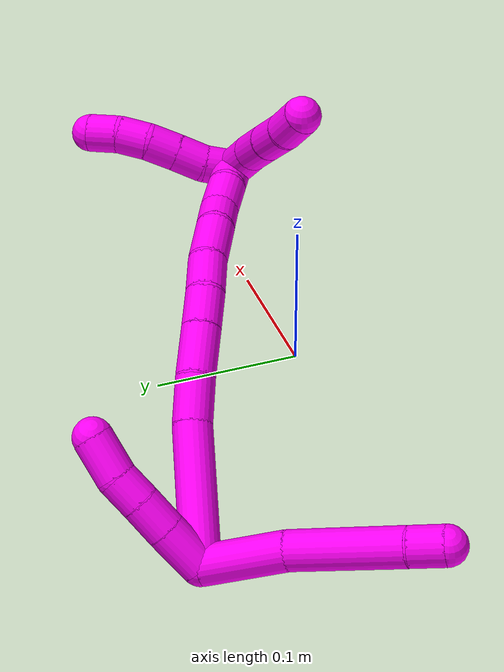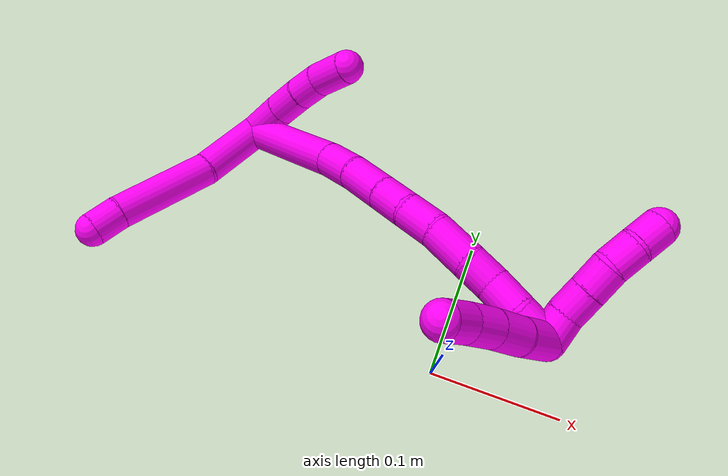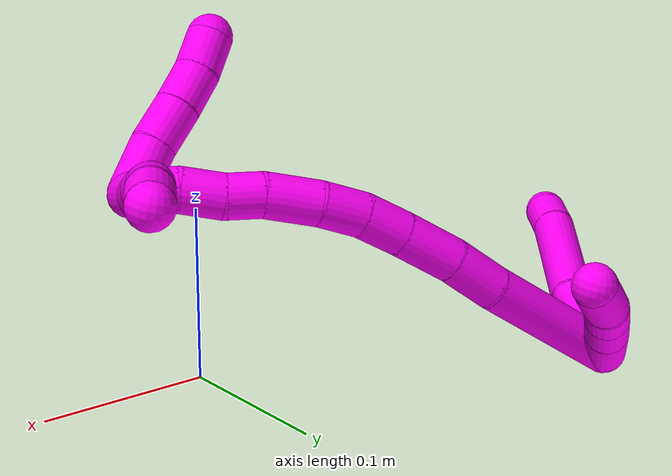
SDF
<sdf version="1.7">
 <world name="default">
  <model name="10">
   <static>0</static>
   <link name="10">
    <collision name="collision-cylinder-e_1_2_8">
     <pose>-0.014524 -0.021295 0.007797 1.21983 -0.569651 -0.403622</pose>
     <geometry><cylinder><radius>0.0125</radius><length>0.053859</length></cylinder></geometry>
     <surface>
      <friction><ode><mu>1.16</mu><mu2>1.16</mu2><slip1>0</slip1><slip2>0</slip2></ode></friction>
      <contact><ode><kp>1e+06</kp><kd>1</kd><max_vel>0</max_vel><min_depth>0.001</min_depth></ode></contact>
     </surface>
    </collision>
    <visual name="visual-cylinder-e_1_2_8">
     <pose>-0.014524 -0.021295 0.007797 1.21983 -0.569651 -0.403622</pose>
     <geometry><cylinder><radius>0.0125</radius><length>0.053859</length></cylinder></geometry>
     <material><ambient>1 0 0.964706 1</ambient></material>
    </visual>
    <collision name="collision-cylinder-e_2_8_9">
     <pose>-0.054026 -0.067108 0.027398 1.1221 -0.7426 -0.479928</pose>
     <geometry><cylinder><radius>0.0125</radius><length>0.073874</length></cylinder></geometry>
     <surface>
      <friction><ode><mu>1.16</mu><mu2>1.16</mu2><slip1>0</slip1><slip2>0</slip2></ode></friction>
      <contact><ode><kp>1e+06</kp><kd>1</kd><max_vel>0</max_vel><min_depth>0.001</min_depth></ode></contact>
     </surface>
    </collision>
    <visual name="visual-cylinder-e_2_8_9">
     <pose>-0.054026 -0.067108 0.027398 1.1221 -0.7426 -0.479928</pose>
     <geometry><cylinder><radius>0.0125</radius><length>0.073874</length></cylinder></geometry>
     <material><ambient>1 0 0.964706 1</ambient></material>
    </visual>
    <collision name="collision-cylinder-e_3_9_6">
     <pose>-0.08618 -0.099754 0.041726 1.26975 -0.700618 -0.525821</pose>
     <geometry><cylinder><radius>0.0125</radius><length>0.022266</length></cylinder></geometry>
     <surface>
      <friction><ode><mu>1.16</mu><mu2>1.16</mu2><slip1>0</slip1><slip2>0</slip2></ode></friction>
      <contact><ode><kp>1e+06</kp><kd>1</kd><max_vel>0</max_vel><min_depth>0.001</min_depth></ode></contact>
     </surface>
    </collision>
    <visual name="visual-cylinder-e_3_9_6">
     <pose>-0.08618 -0.099754 0.041726 1.26975 -0.700618 -0.525821</pose>
     <geometry><cylinder><radius>0.0125</radius><length>0.022266</length></cylinder></geometry>
     <material><ambient>1 0 0.964706 1</ambient></material>
    </visual>
    <collision name="collision-cylinder-e_1_2_10">
     <pose>0.011412 0.004472 0.008588 -0.480107 0.867194 -0.225688</pose>
     <geometry><cylinder><radius>0.0125</radius><length>0.029932</length></cylinder></geometry>
     <surface>
      <friction><ode><mu>1.16</mu><mu2>1.16</mu2><slip1>0</slip1><slip2>0</slip2></ode></friction>
      <contact><ode><kp>1e+06</kp><kd>1</kd><max_vel>0</max_vel><min_depth>0.001</min_depth></ode></contact>
     </surface>
    </collision>
    <visual name="visual-cylinder-e_1_2_10">
     <pose>0.011412 0.004472 0.008588 -0.480107 0.867194 -0.225688</pose>
     <geometry><cylinder><radius>0.0125</radius><length>0.029932</length></cylinder></geometry>
     <material><ambient>1 0 0.964706 1</ambient></material>
    </visual>
    <collision name="collision-cylinder-e_2_10_11">
     <pose>0.031583 0.011871 0.023476 -0.434881 0.900286 -0.212718</pose>
     <geometry><cylinder><radius>0.0125</radius><length>0.022361</length></cylinder></geometry>
     <surface>
      <friction><ode><mu>1.16</mu><mu2>1.16</mu2><slip1>0</slip1><slip2>0</slip2></ode></friction>
      <contact><ode><kp>1e+06</kp><kd>1</kd><max_vel>0</max_vel><min_depth>0.001</min_depth></ode></contact>
     </surface>
    </collision>
    <visual name="visual-cylinder-e_2_10_11">
     <pose>0.031583 0.011871 0.023476 -0.434881 0.900286 -0.212718</pose>
     <geometry><cylinder><radius>0.0125</radius><length>0.022361</length></cylinder></geometry>
     <material><ambient>1 0 0.964706 1</ambient></material>
    </visual>
    <collision name="collision-cylinder-e_3_11_12">
     <pose>0.048583 0.017477 0.03487 -0.484222 0.961165 -0.256092</pose>
     <geometry><cylinder><radius>0.0125</radius><length>0.0201</length></cylinder></geometry>
     <surface>
      <friction><ode><mu>1.16</mu><mu2>1.16</mu2><slip1>0</slip1><slip2>0</slip2></ode></friction>
      <contact><ode><kp>1e+06</kp><kd>1</kd><max_vel>0</max_vel><min_depth>0.001</min_depth></ode></contact>
     </surface>
    </collision>
    <visual name="visual-cylinder-e_3_11_12">
     <pose>0.048583 0.017477 0.03487 -0.484222 0.961165 -0.256092</pose>
     <geometry><cylinder><radius>0.0125</radius><length>0.0201</length></cylinder></geometry>
     <material><ambient>1 0 0.964706 1</ambient></material>
    </visual>
    <collision name="collision-cylinder-e_4_12_5">
     <pose>0.068567 0.02067 0.047198 -0.0709 1.01748 -0.039553</pose>
     <geometry><cylinder><radius>0.0125</radius><length>0.027607</length></cylinder></geometry>
     <surface>
      <friction><ode><mu>1.16</mu><mu2>1.16</mu2><slip1>0</slip1><slip2>0</slip2></ode></friction>
      <contact><ode><kp>1e+06</kp><kd>1</kd><max_vel>0</max_vel><min_depth>0.001</min_depth></ode></contact>
     </surface>
    </collision>
    <visual name="visual-cylinder-e_4_12_5">
     <pose>0.068567 0.02067 0.047198 -0.0709 1.01748 -0.039553</pose>
     <geometry><cylinder><radius>0.0125</radius><length>0.027607</length></cylinder></geometry>
     <material><ambient>1 0 0.964706 1</ambient></material>
    </visual>
    <collision name="collision-cylinder-e_1_2_13">
     <pose>0.035505 -0.020808 0.014924 0.94862 0.945976 0.513833</pose>
     <geometry><cylinder><radius>0.0125</radius><length>0.087551</length></cylinder></geometry>
     <surface>
      <friction><ode><mu>1.16</mu><mu2>1.16</mu2><slip1>0</slip1><slip2>0</slip2></ode></friction>
      <contact><ode><kp>1e+06</kp><kd>1</kd><max_vel>0</max_vel><min_depth>0.001</min_depth></ode></contact>
     </surface>
    </collision>
    <visual name="visual-cylinder-e_1_2_13">
     <pose>0.035505 -0.020808 0.014924 0.94862 0.945976 0.513833</pose>
     <geometry><cylinder><radius>0.0125</radius><length>0.087551</length></cylinder></geometry>
     <material><ambient>1 0 0.964706 1</ambient></material>
    </visual>
    <collision name="collision-cylinder-e_2_13_14">
     <pose>0.081885 -0.050085 0.035628 0.971852 0.814814 0.448205</pose>
     <geometry><cylinder><radius>0.0125</radius><length>0.029893</length></cylinder></geometry>
     <surface>
      <friction><ode><mu>1.16</mu><mu2>1.16</mu2><slip1>0</slip1><slip2>0</slip2></ode></friction>
      <contact><ode><kp>1e+06</kp><kd>1</kd><max_vel>0</max_vel><min_depth>0.001</min_depth></ode></contact>
     </surface>
    </collision>
    <visual name="visual-cylinder-e_2_13_14">
     <pose>0.081885 -0.050085 0.035628 0.971852 0.814814 0.448205</pose>
     <geometry><cylinder><radius>0.0125</radius><length>0.029893</length></cylinder></geometry>
     <material><ambient>1 0 0.964706 1</ambient></material>
    </visual>
    <collision name="collision-cylinder-e_3_14_15">
     <pose>0.104797 -0.068772 0.046196 1.13258 0.81768 0.537548</pose>
     <geometry><cylinder><radius>0.0125</radius><length>0.033</length></cylinder></geometry>
     <surface>
      <friction><ode><mu>1.16</mu><mu2>1.16</mu2><slip1>0</slip1><slip2>0</slip2></ode></friction>
      <contact><ode><kp>1e+06</kp><kd>1</kd><max_vel>0</max_vel><min_depth>0.001</min_depth></ode></contact>
     </surface>
    </collision>
    <visual name="visual-cylinder-e_3_14_15">
     <pose>0.104797 -0.068772 0.046196 1.13258 0.81768 0.537548</pose>
     <geometry><cylinder><radius>0.0125</radius><length>0.033</length></cylinder></geometry>
     <material><ambient>1 0 0.964706 1</ambient></material>
    </visual>
    <collision name="collision-cylinder-e_4_15_16">
     <pose>0.126041 -0.086664 0.054146 1.18006 0.837124 0.579004</pose>
     <geometry><cylinder><radius>0.0125</radius><length>0.02479</length></cylinder></geometry>
     <surface>
      <friction><ode><mu>1.16</mu><mu2>1.16</mu2><slip1>0</slip1><slip2>0</slip2></ode></friction>
      <contact><ode><kp>1e+06</kp><kd>1</kd><max_vel>0</max_vel><min_depth>0.001</min_depth></ode></contact>
     </surface>
    </collision>
    <visual name="visual-cylinder-e_4_15_16">
     <pose>0.126041 -0.086664 0.054146 1.18006 0.837124 0.579004</pose>
     <geometry><cylinder><radius>0.0125</radius><length>0.02479</length></cylinder></geometry>
     <material><ambient>1 0 0.964706 1</ambient></material>
    </visual>
    <collision name="collision-cylinder-e_5_16_17">
     <pose>0.145253 -0.101829 0.058478 1.41569 0.92238 0.804199</pose>
     <geometry><cylinder><radius>0.0125</radius><length>0.025108</length></cylinder></geometry>
     <surface>
      <friction><ode><mu>1.16</mu><mu2>1.16</mu2><slip1>0</slip1><slip2>0</slip2></ode></friction>
      <contact><ode><kp>1e+06</kp><kd>1</kd><max_vel>0</max_vel><min_depth>0.001</min_depth></ode></contact>
     </surface>
    </collision>
    <visual name="visual-cylinder-e_5_16_17">
     <pose>0.145253 -0.101829 0.058478 1.41569 0.92238 0.804199</pose>
     <geometry><cylinder><radius>0.0125</radius><length>0.025108</length></cylinder></geometry>
     <material><ambient>1 0 0.964706 1</ambient></material>
    </visual>
    <collision name="collision-cylinder-e_6_17_18">
     <pose>0.166461 -0.119614 0.059098 1.62431 0.826872 0.866981</pose>
     <geometry><cylinder><radius>0.0125</radius><length>0.030445</length></cylinder></geometry>
     <surface>
      <friction><ode><mu>1.16</mu><mu2>1.16</mu2><slip1>0</slip1><slip2>0</slip2></ode></friction>
      <contact><ode><kp>1e+06</kp><kd>1</kd><max_vel>0</max_vel><min_depth>0.001</min_depth></ode></contact>
     </surface>
    </collision>
    <visual name="visual-cylinder-e_6_17_18">
     <pose>0.166461 -0.119614 0.059098 1.62431 0.826872 0.866981</pose>
     <geometry><cylinder><radius>0.0125</radius><length>0.030445</length></cylinder></geometry>
     <material><ambient>1 0 0.964706 1</ambient></material>
    </visual>
    <collision name="collision-cylinder-e_7_18_19">
     <pose>0.185231 -0.136286 0.056243 1.91732 0.840177 1.13323</pose>
     <geometry><cylinder><radius>0.0125</radius><length>0.020326</length></cylinder></geometry>
     <surface>
      <friction><ode><mu>1.16</mu><mu2>1.16</mu2><slip1>0</slip1><slip2>0</slip2></ode></friction>
      <contact><ode><kp>1e+06</kp><kd>1</kd><max_vel>0</max_vel><min_depth>0.001</min_depth></ode></contact>
     </surface>
    </collision>
    <visual name="visual-cylinder-e_7_18_19">
     <pose>0.185231 -0.136286 0.056243 1.91732 0.840177 1.13323</pose>
     <geometry><cylinder><radius>0.0125</radius><length>0.020326</length></cylinder></geometry>
     <material><ambient>1 0 0.964706 1</ambient></material>
    </visual>
    <collision name="collision-cylinder-e_8_19_20">
     <pose>0.201168 -0.151258 0.053322 1.64262 0.770888 0.822269</pose>
     <geometry><cylinder><radius>0.0125</radius><length>0.02402</length></cylinder></geometry>
     <surface>
      <friction><ode><mu>1.16</mu><mu2>1.16</mu2><slip1>0</slip1><slip2>0</slip2></ode></friction>
      <contact><ode><kp>1e+06</kp><kd>1</kd><max_vel>0</max_vel><min_depth>0.001</min_depth></ode></contact>
     </surface>
    </collision>
    <visual name="visual-cylinder-e_8_19_20">
     <pose>0.201168 -0.151258 0.053322 1.64262 0.770888 0.822269</pose>
     <geometry><cylinder><radius>0.0125</radius><length>0.02402</length></cylinder></geometry>
     <material><ambient>1 0 0.964706 1</ambient></material>
    </visual>
    <collision name="collision-cylinder-e_9_20_1">
     <pose>0.218294 -0.167942 0.049183 1.98118 0.781582 1.12227</pose>
     <geometry><cylinder><radius>0.0125</radius><length>0.024867</length></cylinder></geometry>
     <surface>
      <friction><ode><mu>1.16</mu><mu2>1.16</mu2><slip1>0</slip1><slip2>0</slip2></ode></friction>
      <contact><ode><kp>1e+06</kp><kd>1</kd><max_vel>0</max_vel><min_depth>0.001</min_depth></ode></contact>
     </surface>
    </collision>
    <visual name="visual-cylinder-e_9_20_1">
     <pose>0.218294 -0.167942 0.049183 1.98118 0.781582 1.12227</pose>
     <geometry><cylinder><radius>0.0125</radius><length>0.024867</length></cylinder></geometry>
     <material><ambient>1 0 0.964706 1</ambient></material>
    </visual>
    <collision name="collision-cylinder-e_1_1_21">
     <pose>0.219295 -0.178787 0.057838 0.222295 -0.556049 -0.063688</pose>
     <geometry><cylinder><radius>0.0125</radius><length>0.029395</length></cylinder></geometry>
     <surface>
      <friction><ode><mu>1.16</mu><mu2>1.16</mu2><slip1>0</slip1><slip2>0</slip2></ode></friction>
      <contact><ode><kp>1e+06</kp><kd>1</kd><max_vel>0</max_vel><min_depth>0.001</min_depth></ode></contact>
     </surface>
    </collision>
    <visual name="visual-cylinder-e_1_1_21">
     <pose>0.219295 -0.178787 0.057838 0.222295 -0.556049 -0.063688</pose>
     <geometry><cylinder><radius>0.0125</radius><length>0.029395</length></cylinder></geometry>
     <material><ambient>1 0 0.964706 1</ambient></material>
    </visual>
    <collision name="collision-cylinder-e_2_21_22">
     <pose>0.203886 -0.182812 0.080065 0.125997 -0.646824 -0.042281</pose>
     <geometry><cylinder><radius>0.0125</radius><length>0.025392</length></cylinder></geometry>
     <surface>
      <friction><ode><mu>1.16</mu><mu2>1.16</mu2><slip1>0</slip1><slip2>0</slip2></ode></friction>
      <contact><ode><kp>1e+06</kp><kd>1</kd><max_vel>0</max_vel><min_depth>0.001</min_depth></ode></contact>
     </surface>
    </collision>
    <visual name="visual-cylinder-e_2_21_22">
     <pose>0.203886 -0.182812 0.080065 0.125997 -0.646824 -0.042281</pose>
     <geometry><cylinder><radius>0.0125</radius><length>0.025392</length></cylinder></geometry>
     <material><ambient>1 0 0.964706 1</ambient></material>
    </visual>
    <collision name="collision-cylinder-e_3_22_23">
     <pose>0.189265 -0.185941 0.099231 0.200795 -0.643056 -0.067082</pose>
     <geometry><cylinder><radius>0.0125</radius><length>0.023247</length></cylinder></geometry>
     <surface>
      <friction><ode><mu>1.16</mu><mu2>1.16</mu2><slip1>0</slip1><slip2>0</slip2></ode></friction>
      <contact><ode><kp>1e+06</kp><kd>1</kd><max_vel>0</max_vel><min_depth>0.001</min_depth></ode></contact>
     </surface>
    </collision>
    <visual name="visual-cylinder-e_3_22_23">
     <pose>0.189265 -0.185941 0.099231 0.200795 -0.643056 -0.067082</pose>
     <geometry><cylinder><radius>0.0125</radius><length>0.023247</length></cylinder></geometry>
     <material><ambient>1 0 0.964706 1</ambient></material>
    </visual>
    <collision name="collision-cylinder-e_4_23_4">
     <pose>0.176918 -0.190541 0.117521 0.290738 -0.511582 -0.076536</pose>
     <geometry><cylinder><radius>0.0125</radius><length>0.021967</length></cylinder></geometry>
     <surface>
      <friction><ode><mu>1.16</mu><mu2>1.16</mu2><slip1>0</slip1><slip2>0</slip2></ode></friction>
      <contact><ode><kp>1e+06</kp><kd>1</kd><max_vel>0</max_vel><min_depth>0.001</min_depth></ode></contact>
     </surface>
    </collision>
    <visual name="visual-cylinder-e_4_23_4">
     <pose>0.176918 -0.190541 0.117521 0.290738 -0.511582 -0.076536</pose>
     <geometry><cylinder><radius>0.0125</radius><length>0.021967</length></cylinder></geometry>
     <material><ambient>1 0 0.964706 1</ambient></material>
    </visual>
    <collision name="collision-cylinder-e_1_1_24">
     <pose>0.232363 -0.167956 0.048216 -1.26457 0.559818 -0.415127</pose>
     <geometry><cylinder><radius>0.0125</radius><length>0.02</length></cylinder></geometry>
     <surface>
      <friction><ode><mu>1.16</mu><mu2>1.16</mu2><slip1>0</slip1><slip2>0</slip2></ode></friction>
      <contact><ode><kp>1e+06</kp><kd>1</kd><max_vel>0</max_vel><min_depth>0.001</min_depth></ode></contact>
     </surface>
    </collision>
    <visual name="visual-cylinder-e_1_1_24">
     <pose>0.232363 -0.167956 0.048216 -1.26457 0.559818 -0.415127</pose>
     <geometry><cylinder><radius>0.0125</radius><length>0.02</length></cylinder></geometry>
     <material><ambient>1 0 0.964706 1</ambient></material>
    </visual>
    <collision name="collision-cylinder-e_2_24_25">
     <pose>0.244244 -0.153306 0.054466 -1.05844 0.716948 -0.431437</pose>
     <geometry><cylinder><radius>0.0125</radius><length>0.02</length></cylinder></geometry>
     <surface>
      <friction><ode><mu>1.16</mu><mu2>1.16</mu2><slip1>0</slip1><slip2>0</slip2></ode></friction>
      <contact><ode><kp>1e+06</kp><kd>1</kd><max_vel>0</max_vel><min_depth>0.001</min_depth></ode></contact>
     </surface>
    </collision>
    <visual name="visual-cylinder-e_2_24_25">
     <pose>0.244244 -0.153306 0.054466 -1.05844 0.716948 -0.431437</pose>
     <geometry><cylinder><radius>0.0125</radius><length>0.02</length></cylinder></geometry>
     <material><ambient>1 0 0.964706 1</ambient></material>
    </visual>
    <collision name="collision-cylinder-e_3_25_26">
     <pose>0.257269 -0.139966 0.061699 -1.08927 0.701607 -0.436281</pose>
     <geometry><cylinder><radius>0.0125</radius><length>0.02</length></cylinder></geometry>
     <surface>
      <friction><ode><mu>1.16</mu><mu2>1.16</mu2><slip1>0</slip1><slip2>0</slip2></ode></friction>
      <contact><ode><kp>1e+06</kp><kd>1</kd><max_vel>0</max_vel><min_depth>0.001</min_depth></ode></contact>
     </surface>
    </collision>
    <visual name="visual-cylinder-e_3_25_26">
     <pose>0.257269 -0.139966 0.061699 -1.08927 0.701607 -0.436281</pose>
     <geometry><cylinder><radius>0.0125</radius><length>0.02</length></cylinder></geometry>
     <material><ambient>1 0 0.964706 1</ambient></material>
    </visual>
    <collision name="collision-cylinder-e_4_26_27">
     <pose>0.271142 -0.126595 0.066417 -1.39377 0.83572 -0.711616</pose>
     <geometry><cylinder><radius>0.0125</radius><length>0.02</length></cylinder></geometry>
     <surface>
      <friction><ode><mu>1.16</mu><mu2>1.16</mu2><slip1>0</slip1><slip2>0</slip2></ode></friction>
      <contact><ode><kp>1e+06</kp><kd>1</kd><max_vel>0</max_vel><min_depth>0.001</min_depth></ode></contact>
     </surface>
    </collision>
    <visual name="visual-cylinder-e_4_26_27">
     <pose>0.271142 -0.126595 0.066417 -1.39377 0.83572 -0.711616</pose>
     <geometry><cylinder><radius>0.0125</radius><length>0.02</length></cylinder></geometry>
     <material><ambient>1 0 0.964706 1</ambient></material>
    </visual>
    <collision name="collision-cylinder-e_5_27_3">
     <pose>0.285648 -0.113009 0.066617 -1.71033 0.787956 -0.89208</pose>
     <geometry><cylinder><radius>0.0125</radius><length>0.02</length></cylinder></geometry>
     <surface>
      <friction><ode><mu>1.16</mu><mu2>1.16</mu2><slip1>0</slip1><slip2>0</slip2></ode></friction>
      <contact><ode><kp>1e+06</kp><kd>1</kd><max_vel>0</max_vel><min_depth>0.001</min_depth></ode></contact>
     </surface>
    </collision>
    <visual name="visual-cylinder-e_5_27_3">
     <pose>0.285648 -0.113009 0.066617 -1.71033 0.787956 -0.89208</pose>
     <geometry><cylinder><radius>0.0125</radius><length>0.02</length></cylinder></geometry>
     <material><ambient>1 0 0.964706 1</ambient></material>
    </visual>
    <collision name="collision-sphere-3">
     <pose>0.292738 -0.106025 0.065636 0 -0 0</pose>
     <geometry><sphere><radius>0.0125</radius></sphere></geometry>
     <surface>
      <friction><ode><mu>1.16</mu><mu2>1.16</mu2><slip1>0</slip1><slip2>0</slip2></ode></friction>
      <contact><ode><kp>1e+06</kp><kd>1</kd><max_vel>0</max_vel><min_depth>0.001</min_depth></ode></contact>
     </surface>
    </collision>
    <visual name="visual-sphere-3">
     <pose>0.292738 -0.106025 0.065636 0 -0 0</pose>
     <geometry><sphere><radius>0.0125</radius></sphere></geometry>
     <material><ambient>1 0 0.964706 1</ambient></material>
    </visual>
    <collision name="collision-sphere-27">
     <pose>0.278559 -0.119994 0.067598 0 -0 0</pose>
     <geometry><sphere><radius>0.0125</radius></sphere></geometry>
     <surface>
      <friction><ode><mu>1.16</mu><mu2>1.16</mu2><slip1>0</slip1><slip2>0</slip2></ode></friction>
      <contact><ode><kp>1e+06</kp><kd>1</kd><max_vel>0</max_vel><min_depth>0.001</min_depth></ode></contact>
     </surface>
    </collision>
    <visual name="visual-sphere-27">
     <pose>0.278559 -0.119994 0.067598 0 -0 0</pose>
     <geometry><sphere><radius>0.0125</radius></sphere></geometry>
     <material><ambient>1 0 0.964706 1</ambient></material>
    </visual>
    <collision name="collision-sphere-26">
     <pose>0.263724 -0.133197 0.065236 0 -0 0</pose>
     <geometry><sphere><radius>0.0125</radius></sphere></geometry>
     <surface>
      <friction><ode><mu>1.16</mu><mu2>1.16</mu2><slip1>0</slip1><slip2>0</slip2></ode></friction>
      <contact><ode><kp>1e+06</kp><kd>1</kd><max_vel>0</max_vel><min_depth>0.001</min_depth></ode></contact>
     </surface>
    </collision>
    <visual name="visual-sphere-26">
     <pose>0.263724 -0.133197 0.065236 0 -0 0</pose>
     <geometry><sphere><radius>0.0125</radius></sphere></geometry>
     <material><ambient>1 0 0.964706 1</ambient></material>
    </visual>
    <collision name="collision-sphere-25">
     <pose>0.250815 -0.146736 0.058161 0 -0 0</pose>
     <geometry><sphere><radius>0.0125</radius></sphere></geometry>
     <surface>
      <friction><ode><mu>1.16</mu><mu2>1.16</mu2><slip1>0</slip1><slip2>0</slip2></ode></friction>
      <contact><ode><kp>1e+06</kp><kd>1</kd><max_vel>0</max_vel><min_depth>0.001</min_depth></ode></contact>
     </surface>
    </collision>
    <visual name="visual-sphere-25">
     <pose>0.250815 -0.146736 0.058161 0 -0 0</pose>
     <geometry><sphere><radius>0.0125</radius></sphere></geometry>
     <material><ambient>1 0 0.964706 1</ambient></material>
    </visual>
    <collision name="collision-sphere-24">
     <pose>0.237673 -0.159876 0.05077 0 -0 0</pose>
     <geometry><sphere><radius>0.0125</radius></sphere></geometry>
     <surface>
      <friction><ode><mu>1.16</mu><mu2>1.16</mu2><slip1>0</slip1><slip2>0</slip2></ode></friction>
      <contact><ode><kp>1e+06</kp><kd>1</kd><max_vel>0</max_vel><min_depth>0.001</min_depth></ode></contact>
     </surface>
    </collision>
    <visual name="visual-sphere-24">
     <pose>0.237673 -0.159876 0.05077 0 -0 0</pose>
     <geometry><sphere><radius>0.0125</radius></sphere></geometry>
     <material><ambient>1 0 0.964706 1</ambient></material>
    </visual>
    <collision name="collision-sphere-4">
     <pose>0.171541 -0.193287 0.126696 0 -0 0</pose>
     <geometry><sphere><radius>0.0125</radius></sphere></geometry>
     <surface>
      <friction><ode><mu>1.16</mu><mu2>1.16</mu2><slip1>0</slip1><slip2>0</slip2></ode></friction>
      <contact><ode><kp>1e+06</kp><kd>1</kd><max_vel>0</max_vel><min_depth>0.001</min_depth></ode></contact>
     </surface>
    </collision>
    <visual name="visual-sphere-4">
     <pose>0.171541 -0.193287 0.126696 0 -0 0</pose>
     <geometry><sphere><radius>0.0125</radius></sphere></geometry>
     <material><ambient>1 0 0.964706 1</ambient></material>
    </visual>
    <collision name="collision-sphere-23">
     <pose>0.182295 -0.187796 0.108346 0 -0 0</pose>
     <geometry><sphere><radius>0.0125</radius></sphere></geometry>
     <surface>
      <friction><ode><mu>1.16</mu><mu2>1.16</mu2><slip1>0</slip1><slip2>0</slip2></ode></friction>
      <contact><ode><kp>1e+06</kp><kd>1</kd><max_vel>0</max_vel><min_depth>0.001</min_depth></ode></contact>
     </surface>
    </collision>
    <visual name="visual-sphere-23">
     <pose>0.182295 -0.187796 0.108346 0 -0 0</pose>
     <geometry><sphere><radius>0.0125</radius></sphere></geometry>
     <material><ambient>1 0 0.964706 1</ambient></material>
    </visual>
    <collision name="collision-sphere-22">
     <pose>0.196234 -0.184086 0.090116 0 -0 0</pose>
     <geometry><sphere><radius>0.0125</radius></sphere></geometry>
     <surface>
      <friction><ode><mu>1.16</mu><mu2>1.16</mu2><slip1>0</slip1><slip2>0</slip2></ode></friction>
      <contact><ode><kp>1e+06</kp><kd>1</kd><max_vel>0</max_vel><min_depth>0.001</min_depth></ode></contact>
     </surface>
    </collision>
    <visual name="visual-sphere-22">
     <pose>0.196234 -0.184086 0.090116 0 -0 0</pose>
     <geometry><sphere><radius>0.0125</radius></sphere></geometry>
     <material><ambient>1 0 0.964706 1</ambient></material>
    </visual>
    <collision name="collision-sphere-21">
     <pose>0.211537 -0.181539 0.070014 0 -0 0</pose>
     <geometry><sphere><radius>0.0125</radius></sphere></geometry>
     <surface>
      <friction><ode><mu>1.16</mu><mu2>1.16</mu2><slip1>0</slip1><slip2>0</slip2></ode></friction>
      <contact><ode><kp>1e+06</kp><kd>1</kd><max_vel>0</max_vel><min_depth>0.001</min_depth></ode></contact>
     </surface>
    </collision>
    <visual name="visual-sphere-21">
     <pose>0.211537 -0.181539 0.070014 0 -0 0</pose>
     <geometry><sphere><radius>0.0125</radius></sphere></geometry>
     <material><ambient>1 0 0.964706 1</ambient></material>
    </visual>
    <collision name="collision-sphere-1">
     <pose>0.227052 -0.176035 0.045662 0 -0 0</pose>
     <geometry><sphere><radius>0.0125</radius></sphere></geometry>
     <surface>
      <friction><ode><mu>1.16</mu><mu2>1.16</mu2><slip1>0</slip1><slip2>0</slip2></ode></friction>
      <contact><ode><kp>1e+06</kp><kd>1</kd><max_vel>0</max_vel><min_depth>0.001</min_depth></ode></contact>
     </surface>
    </collision>
    <visual name="visual-sphere-1">
     <pose>0.227052 -0.176035 0.045662 0 -0 0</pose>
     <geometry><sphere><radius>0.0125</radius></sphere></geometry>
     <material><ambient>1 0 0.964706 1</ambient></material>
    </visual>
    <collision name="collision-sphere-11">
     <pose>0.040343 0.014798 0.029777 0 -0 0</pose>
     <geometry><sphere><radius>0.0125</radius></sphere></geometry>
     <surface>
      <friction><ode><mu>1.16</mu><mu2>1.16</mu2><slip1>0</slip1><slip2>0</slip2></ode></friction>
      <contact><ode><kp>1e+06</kp><kd>1</kd><max_vel>0</max_vel><min_depth>0.001</min_depth></ode></contact>
     </surface>
    </collision>
    <visual name="visual-sphere-11">
     <pose>0.040343 0.014798 0.029777 0 -0 0</pose>
     <geometry><sphere><radius>0.0125</radius></sphere></geometry>
     <material><ambient>1 0 0.964706 1</ambient></material>
    </visual>
    <collision name="collision-sphere-10">
     <pose>0.022823 0.008944 0.017176 0 -0 0</pose>
     <geometry><sphere><radius>0.0125</radius></sphere></geometry>
     <surface>
      <friction><ode><mu>1.16</mu><mu2>1.16</mu2><slip1>0</slip1><slip2>0</slip2></ode></friction>
      <contact><ode><kp>1e+06</kp><kd>1</kd><max_vel>0</max_vel><min_depth>0.001</min_depth></ode></contact>
     </surface>
    </collision>
    <visual name="visual-sphere-10">
     <pose>0.022823 0.008944 0.017176 0 -0 0</pose>
     <geometry><sphere><radius>0.0125</radius></sphere></geometry>
     <material><ambient>1 0 0.964706 1</ambient></material>
    </visual>
    <collision name="collision-sphere-6">
     <pose>-0.093358 -0.107882 0.044249 0 -0 0</pose>
     <geometry><sphere><radius>0.0125</radius></sphere></geometry>
     <surface>
      <friction><ode><mu>1.16</mu><mu2>1.16</mu2><slip1>0</slip1><slip2>0</slip2></ode></friction>
      <contact><ode><kp>1e+06</kp><kd>1</kd><max_vel>0</max_vel><min_depth>0.001</min_depth></ode></contact>
     </surface>
    </collision>
    <visual name="visual-sphere-6">
     <pose>-0.093358 -0.107882 0.044249 0 -0 0</pose>
     <geometry><sphere><radius>0.0125</radius></sphere></geometry>
     <material><ambient>1 0 0.964706 1</ambient></material>
    </visual>
    <collision name="collision-sphere-9">
     <pose>-0.079003 -0.091627 0.039202 0 -0 0</pose>
     <geometry><sphere><radius>0.0125</radius></sphere></geometry>
     <surface>
      <friction><ode><mu>1.16</mu><mu2>1.16</mu2><slip1>0</slip1><slip2>0</slip2></ode></friction>
      <contact><ode><kp>1e+06</kp><kd>1</kd><max_vel>0</max_vel><min_depth>0.001</min_depth></ode></contact>
     </surface>
    </collision>
    <visual name="visual-sphere-9">
     <pose>-0.079003 -0.091627 0.039202 0 -0 0</pose>
     <geometry><sphere><radius>0.0125</radius></sphere></geometry>
     <material><ambient>1 0 0.964706 1</ambient></material>
    </visual>
    <collision name="collision-sphere-2">
     <geometry><sphere><radius>0.0125</radius></sphere></geometry>
     <surface>
      <friction><ode><mu>1.16</mu><mu2>1.16</mu2><slip1>0</slip1><slip2>0</slip2></ode></friction>
      <contact><ode><kp>1e+06</kp><kd>1</kd><max_vel>0</max_vel><min_depth>0.001</min_depth></ode></contact>
     </surface>
    </collision>
    <visual name="visual-sphere-2">
     <geometry><sphere><radius>0.0125</radius></sphere></geometry>
     <material><ambient>1 0 0.964706 1</ambient></material>
    </visual>
    <collision name="collision-sphere-19">
     <pose>0.1928 -0.142665 0.05394 0 -0 0</pose>
     <geometry><sphere><radius>0.0125</radius></sphere></geometry>
     <surface>
      <friction><ode><mu>1.16</mu><mu2>1.16</mu2><slip1>0</slip1><slip2>0</slip2></ode></friction>
      <contact><ode><kp>1e+06</kp><kd>1</kd><max_vel>0</max_vel><min_depth>0.001</min_depth></ode></contact>
     </surface>
    </collision>
    <visual name="visual-sphere-19">
     <pose>0.1928 -0.142665 0.05394 0 -0 0</pose>
     <geometry><sphere><radius>0.0125</radius></sphere></geometry>
     <material><ambient>1 0 0.964706 1</ambient></material>
    </visual>
    <collision name="collision-sphere-8">
     <pose>-0.029048 -0.04259 0.015593 0 -0 0</pose>
     <geometry><sphere><radius>0.0125</radius></sphere></geometry>
     <surface>
      <friction><ode><mu>1.16</mu><mu2>1.16</mu2><slip1>0</slip1><slip2>0</slip2></ode></friction>
      <contact><ode><kp>1e+06</kp><kd>1</kd><max_vel>0</max_vel><min_depth>0.001</min_depth></ode></contact>
     </surface>
    </collision>
    <visual name="visual-sphere-8">
     <pose>-0.029048 -0.04259 0.015593 0 -0 0</pose>
     <geometry><sphere><radius>0.0125</radius></sphere></geometry>
     <material><ambient>1 0 0.964706 1</ambient></material>
    </visual>
    <collision name="collision-sphere-12">
     <pose>0.056823 0.020156 0.039963 0 -0 0</pose>
     <geometry><sphere><radius>0.0125</radius></sphere></geometry>
     <surface>
      <friction><ode><mu>1.16</mu><mu2>1.16</mu2><slip1>0</slip1><slip2>0</slip2></ode></friction>
      <contact><ode><kp>1e+06</kp><kd>1</kd><max_vel>0</max_vel><min_depth>0.001</min_depth></ode></contact>
     </surface>
    </collision>
    <visual name="visual-sphere-12">
     <pose>0.056823 0.020156 0.039963 0 -0 0</pose>
     <geometry><sphere><radius>0.0125</radius></sphere></geometry>
     <material><ambient>1 0 0.964706 1</ambient></material>
    </visual>
    <collision name="collision-sphere-5">
     <pose>0.08031 0.021183 0.054434 0 -0 0</pose>
     <geometry><sphere><radius>0.0125</radius></sphere></geometry>
     <surface>
      <friction><ode><mu>1.16</mu><mu2>1.16</mu2><slip1>0</slip1><slip2>0</slip2></ode></friction>
      <contact><ode><kp>1e+06</kp><kd>1</kd><max_vel>0</max_vel><min_depth>0.001</min_depth></ode></contact>
     </surface>
    </collision>
    <visual name="visual-sphere-5">
     <pose>0.08031 0.021183 0.054434 0 -0 0</pose>
     <geometry><sphere><radius>0.0125</radius></sphere></geometry>
     <material><ambient>1 0 0.964706 1</ambient></material>
    </visual>
    <collision name="collision-sphere-13">
     <pose>0.07101 -0.041616 0.029847 0 -0 0</pose>
     <geometry><sphere><radius>0.0125</radius></sphere></geometry>
     <surface>
      <friction><ode><mu>1.16</mu><mu2>1.16</mu2><slip1>0</slip1><slip2>0</slip2></ode></friction>
      <contact><ode><kp>1e+06</kp><kd>1</kd><max_vel>0</max_vel><min_depth>0.001</min_depth></ode></contact>
     </surface>
    </collision>
    <visual name="visual-sphere-13">
     <pose>0.07101 -0.041616 0.029847 0 -0 0</pose>
     <geometry><sphere><radius>0.0125</radius></sphere></geometry>
     <material><ambient>1 0 0.964706 1</ambient></material>
    </visual>
    <collision name="collision-sphere-14">
     <pose>0.092759 -0.058553 0.041408 0 -0 0</pose>
     <geometry><sphere><radius>0.0125</radius></sphere></geometry>
     <surface>
      <friction><ode><mu>1.16</mu><mu2>1.16</mu2><slip1>0</slip1><slip2>0</slip2></ode></friction>
      <contact><ode><kp>1e+06</kp><kd>1</kd><max_vel>0</max_vel><min_depth>0.001</min_depth></ode></contact>
     </surface>
    </collision>
    <visual name="visual-sphere-14">
     <pose>0.092759 -0.058553 0.041408 0 -0 0</pose>
     <geometry><sphere><radius>0.0125</radius></sphere></geometry>
     <material><ambient>1 0 0.964706 1</ambient></material>
    </visual>
    <collision name="collision-sphere-15">
     <pose>0.116835 -0.07899 0.050985 0 -0 0</pose>
     <geometry><sphere><radius>0.0125</radius></sphere></geometry>
     <surface>
      <friction><ode><mu>1.16</mu><mu2>1.16</mu2><slip1>0</slip1><slip2>0</slip2></ode></friction>
      <contact><ode><kp>1e+06</kp><kd>1</kd><max_vel>0</max_vel><min_depth>0.001</min_depth></ode></contact>
     </surface>
    </collision>
    <visual name="visual-sphere-15">
     <pose>0.116835 -0.07899 0.050985 0 -0 0</pose>
     <geometry><sphere><radius>0.0125</radius></sphere></geometry>
     <material><ambient>1 0 0.964706 1</ambient></material>
    </visual>
    <collision name="collision-sphere-16">
     <pose>0.135247 -0.094338 0.057307 0 -0 0</pose>
     <geometry><sphere><radius>0.0125</radius></sphere></geometry>
     <surface>
      <friction><ode><mu>1.16</mu><mu2>1.16</mu2><slip1>0</slip1><slip2>0</slip2></ode></friction>
      <contact><ode><kp>1e+06</kp><kd>1</kd><max_vel>0</max_vel><min_depth>0.001</min_depth></ode></contact>
     </surface>
    </collision>
    <visual name="visual-sphere-16">
     <pose>0.135247 -0.094338 0.057307 0 -0 0</pose>
     <geometry><sphere><radius>0.0125</radius></sphere></geometry>
     <material><ambient>1 0 0.964706 1</ambient></material>
    </visual>
    <collision name="collision-sphere-17">
     <pose>0.15526 -0.10932 0.05965 0 -0 0</pose>
     <geometry><sphere><radius>0.0125</radius></sphere></geometry>
     <surface>
      <friction><ode><mu>1.16</mu><mu2>1.16</mu2><slip1>0</slip1><slip2>0</slip2></ode></friction>
      <contact><ode><kp>1e+06</kp><kd>1</kd><max_vel>0</max_vel><min_depth>0.001</min_depth></ode></contact>
     </surface>
    </collision>
    <visual name="visual-sphere-17">
     <pose>0.15526 -0.10932 0.05965 0 -0 0</pose>
     <geometry><sphere><radius>0.0125</radius></sphere></geometry>
     <material><ambient>1 0 0.964706 1</ambient></material>
    </visual>
    <collision name="collision-sphere-18">
     <pose>0.177662 -0.129907 0.058547 0 -0 0</pose>
     <geometry><sphere><radius>0.0125</radius></sphere></geometry>
     <surface>
      <friction><ode><mu>1.16</mu><mu2>1.16</mu2><slip1>0</slip1><slip2>0</slip2></ode></friction>
      <contact><ode><kp>1e+06</kp><kd>1</kd><max_vel>0</max_vel><min_depth>0.001</min_depth></ode></contact>
     </surface>
    </collision>
    <visual name="visual-sphere-18">
     <pose>0.177662 -0.129907 0.058547 0 -0 0</pose>
     <geometry><sphere><radius>0.0125</radius></sphere></geometry>
     <material><ambient>1 0 0.964706 1</ambient></material>
    </visual>
    <collision name="collision-sphere-20">
     <pose>0.209536 -0.15985 0.052704 0 -0 0</pose>
     <geometry><sphere><radius>0.0125</radius></sphere></geometry>
     <surface>
      <friction><ode><mu>1.16</mu><mu2>1.16</mu2><slip1>0</slip1><slip2>0</slip2></ode></friction>
      <contact><ode><kp>1e+06</kp><kd>1</kd><max_vel>0</max_vel><min_depth>0.001</min_depth></ode></contact>
     </surface>
    </collision>
    <visual name="visual-sphere-20">
     <pose>0.209536 -0.15985 0.052704 0 -0 0</pose>
     <geometry><sphere><radius>0.0125</radius></sphere></geometry>
     <material><ambient>1 0 0.964706 1</ambient></material>
    </visual>
    <inertial>
     <pose>0.103769 -0.085255 0.043842 0 -0 0</pose>
     <mass>0.75</mass>
     <inertia>
      <ixx>0.000117</ixx>
      <ixy>0</ixy>
      <ixz>0</ixz>
      <iyy>0.000106</iyy>
      <iyz>0</iyz>
      <izz>5.6e-05</izz>
     </inertia>
    </inertial>
   </link>
   <pose>-0.189165 0.131873 0.010481 -0.150407 -0.194873 0.267044</pose>
  </model>
 </world>
</sdf>
